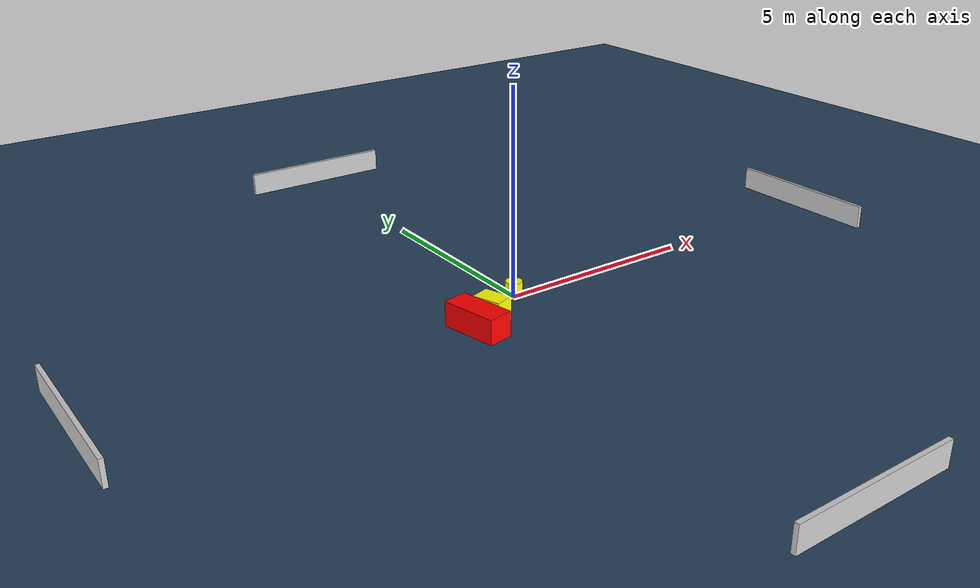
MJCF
<?xml version="1.0" ?>
<mujoco model="generated_environment">
  <option timestep="0.01" integrator="RK4" cone="elliptic"/>
  <default>
    <geom density="1"/>
  </default>
  <asset>
    <texture builtin="gradient" height="3072" name="skybox" rgb1="0.3 0.5 0.7" rgb2="0 0 0" type="skybox" width="512"/>
    <texture builtin="checker" height="300" name="groundplane" rgb1="0.2 0.3 0.4" rgb2="0.1 0.2 0.3" type="2d" width="300"/>
    <material name="groundplane" reflectance="0.2" texrepeat="5 5" texture="groundplane"/>
  </asset>
  <worldbody>
    <light dir="0 0 -1" directional="true" pos="0 0 1.5"/>
    <geom condim="3" friction="0.5 0.005 0.001" material="groundplane" name="floor" pos="0 0 0" size="0 0 0.05" type="plane"/>
    <body name="walls">
      <geom name="wall_1" condim="4" pos="-10.0 0.0 0.3" rgba="0.800000011920929 0.800000011920929 0.800000011920929 1.0" size="0.05 2.0 0.3" type="box"/>
      <geom name="wall_2" condim="4" pos="10.0 0.0 0.3" rgba="0.800000011920929 0.800000011920929 0.800000011920929 1.0" size="0.05 2.0 0.3" type="box"/>
      <geom name="wall_3" condim="4" pos="0.0 -10.0 0.3" rgba="0.800000011920929 0.800000011920929 0.800000011920929 1.0" size="2.0 0.05 0.3" type="box"/>
      <geom name="wall_4" condim="4" pos="0.0 10.0 0.3" rgba="0.800000011920929 0.800000011920929 0.800000011920929 1.0" size="2.0 0.05 0.3" type="box"/>
    </body>
    <body name="robot">
      <joint name="joint_x" type="slide" pos="0 0 0" axis="1 0 0"/>
      <joint name="joint_y" type="slide" pos="0 0 0" axis="0 1 0"/>
      <geom name="robot" type="cylinder" pos="0.0 0.0 0.2" size="0.2 0.2 0.0" mass="5.0" friction="1.0 0.005 0.0001" condim="4" rgba="1.0 1.0 0.0 1.0"/>
    </body>
    <body name="obstacle_1_movable">
      <geom name="obstacle_1_movable" condim="4" pos="-1.1137356130654272 -0.7166787674153536 0.3" euler="0 0 288.90296245106697" friction="0.0 0.005 0.001" rgba="1.0 1.0 0.0 1.0" size="0.3462884282205949 0.23572661922202917 0.3" type="box" mass="0.1"/>
      <joint type="free"/>
    </body>
    <body name="obstacle_2_static">
      <geom name="obstacle_2_static" condim="4" pos="-1.6637184360923205 -0.9419265611881124 0.3" euler="0 0 101.72572453201869" friction="0.0 0.005 0.001" rgba="1.0 0.0 0.0 1.0" size="0.6918379541842663 0.30444858769702055 0.3" type="box"/>
    </body>
  </worldbody>
  <actuator>
    <motor name="actuator_x" joint="joint_x" gear="1" ctrlrange="-1 1"/>
    <motor name="actuator_y" joint="joint_y" gear="1" ctrlrange="-1 1"/>
  </actuator>
</mujoco>
